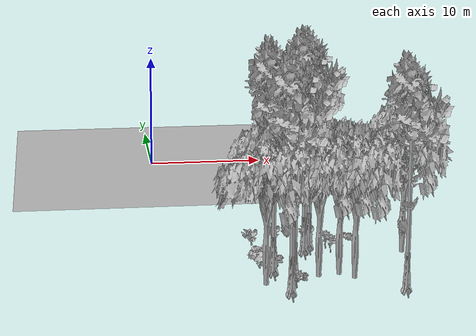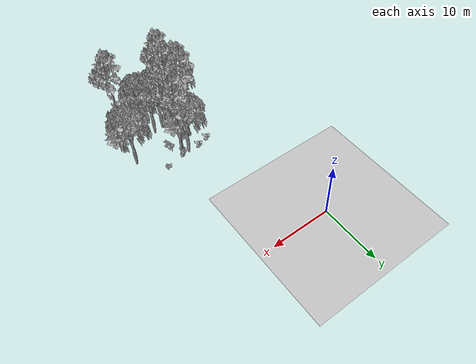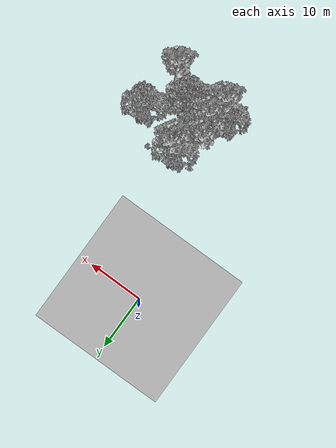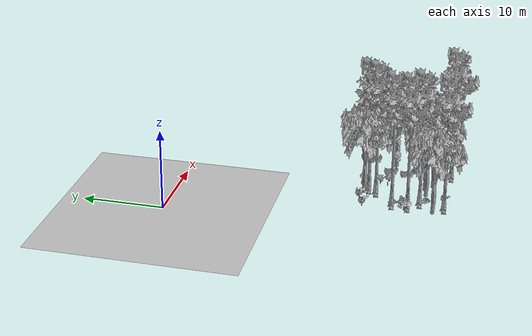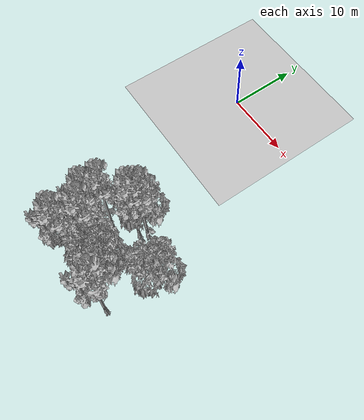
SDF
<sdf version="1.7">
 <world name="default">
  <model name="ground_plane">
   <static>1</static>
   <link name="link">
    <collision name="collision">
     <pose>-50 0 0 0 -0 0</pose>
     <geometry><plane><normal>0 0 1</normal><size>80 80</size></plane></geometry>
     <surface><contact><ode><min_depth>0.01</min_depth><max_vel>0</max_vel></ode></contact></surface>
    </collision>
    <visual name="grass">
     <cast_shadows>0</cast_shadows>
     <geometry>
      <mesh>
       <scale>0.46714285714285714 0.46714285714285714 0.1</scale>
       <uri>file://grass_plane/meshes/grass_plane.dae</uri>
      </mesh>
     </geometry>
    </visual>
   </link>
  </model>
  <model name="Tree 55">
   <static>1</static>
   <pose>17.632661621212804 -25.537050831752346 0 1.57079 -0 0</pose>
   <link name="link">
    <collision name="collision">
     <geometry><mesh><scale>3.5 5 3.5</scale><uri>model://tree_2/meshes/tree_2.obj</uri></mesh></geometry>
    </collision>
    <visual name="visual">
     <geometry><mesh><scale>3.5 5 3.5</scale><uri>model://tree_2/meshes/tree_2.obj</uri></mesh></geometry>
    </visual>
   </link>
  </model>
  <model name="Tree 137">
   <static>1</static>
   <pose>10.25907868177923 -23.945276035842316 0 1.57079 -0 0</pose>
   <link name="link">
    <collision name="collision">
     <geometry><mesh><scale>3.5 5 3.5</scale><uri>model://tree_9/meshes/tree_9.obj</uri></mesh></geometry>
    </collision>
    <visual name="visual">
     <geometry><mesh><scale>3.5 5 3.5</scale><uri>model://tree_9/meshes/tree_9.obj</uri></mesh></geometry>
    </visual>
   </link>
  </model>
  <model name="Tree 148">
   <static>1</static>
   <pose>7.224737145271803 -28.172150985968116 0 1.57079 -0 0</pose>
   <link name="link">
    <collision name="collision">
     <geometry><mesh><scale>3.5 5 3.5</scale><uri>model://tree_9/meshes/tree_9.obj</uri></mesh></geometry>
    </collision>
    <visual name="visual">
     <geometry><mesh><scale>3.5 5 3.5</scale><uri>model://tree_9/meshes/tree_9.obj</uri></mesh></geometry>
    </visual>
   </link>
  </model>
  <model name="Tree 259">
   <static>1</static>
   <pose>9.63490145569692 -22.59451453019791 0 1.57079 -0 0</pose>
   <link name="link">
    <collision name="collision">
     <geometry><mesh><scale>3.5 5 3.5</scale><uri>model://tree_2/meshes/tree_2.obj</uri></mesh></geometry>
    </collision>
    <visual name="visual">
     <geometry><mesh><scale>3.5 5 3.5</scale><uri>model://tree_2/meshes/tree_2.obj</uri></mesh></geometry>
    </visual>
   </link>
  </model>
  <model name="Tree 291">
   <static>1</static>
   <pose>16.433530380870288 -32.573287998336184 0 1.57079 -0 0</pose>
   <link name="link">
    <collision name="collision">
     <geometry><mesh><scale>3.5 5 3.5</scale><uri>model://tree_9/meshes/tree_9.obj</uri></mesh></geometry>
    </collision>
    <visual name="visual">
     <geometry><mesh><scale>3.5 5 3.5</scale><uri>model://tree_9/meshes/tree_9.obj</uri></mesh></geometry>
    </visual>
   </link>
  </model>
  <model name="Tree 295">
   <static>1</static>
   <pose>6.143224709162496 -31.300290355686275 0 1.57079 -0 0</pose>
   <link name="link">
    <collision name="collision">
     <geometry><mesh><scale>3.5 5 3.5</scale><uri>model://tree_2/meshes/tree_2.obj</uri></mesh></geometry>
    </collision>
    <visual name="visual">
     <geometry><mesh><scale>3.5 5 3.5</scale><uri>model://tree_2/meshes/tree_2.obj</uri></mesh></geometry>
    </visual>
   </link>
  </model>
  <model name="Tree 340">
   <static>1</static>
   <pose>8.617815341840625 -29.4753462498021 0 1.57079 -0 0</pose>
   <link name="link">
    <collision name="collision">
     <geometry><mesh><scale>3.5 5 3.5</scale><uri>model://tree_9/meshes/tree_9.obj</uri></mesh></geometry>
    </collision>
    <visual name="visual">
     <geometry><mesh><scale>3.5 5 3.5</scale><uri>model://tree_9/meshes/tree_9.obj</uri></mesh></geometry>
    </visual>
   </link>
  </model>
  <model name="Tree 344">
   <static>1</static>
   <pose>7.915771031941233 -32.46294408199248 0 1.57079 -0 0</pose>
   <link name="link">
    <collision name="collision">
     <geometry><mesh><scale>3.5 5 3.5</scale><uri>model://tree_9/meshes/tree_9.obj</uri></mesh></geometry>
    </collision>
    <visual name="visual">
     <geometry><mesh><scale>3.5 5 3.5</scale><uri>model://tree_9/meshes/tree_9.obj</uri></mesh></geometry>
    </visual>
   </link>
  </model>
  <model name="Tree 369">
   <static>1</static>
   <pose>12.874493996447647 -30.635437042448494 0 1.57079 -0 0</pose>
   <link name="link">
    <collision name="collision">
     <geometry><mesh><scale>3.5 5 3.5</scale><uri>model://tree_2/meshes/tree_2.obj</uri></mesh></geometry>
    </collision>
    <visual name="visual">
     <geometry><mesh><scale>3.5 5 3.5</scale><uri>model://tree_2/meshes/tree_2.obj</uri></mesh></geometry>
    </visual>
   </link>
  </model>
  <model name="Tree 378">
   <static>1</static>
   <pose>10.272586851166281 -30.061698999978105 0 1.57079 -0 0</pose>
   <link name="link">
    <collision name="collision">
     <geometry><mesh><scale>3.5 5 3.5</scale><uri>model://tree_2/meshes/tree_2.obj</uri></mesh></geometry>
    </collision>
    <visual name="visual">
     <geometry><mesh><scale>3.5 5 3.5</scale><uri>model://tree_2/meshes/tree_2.obj</uri></mesh></geometry>
    </visual>
   </link>
  </model>
  <model name="Tree 400">
   <static>1</static>
   <pose>7.4968896979451145 -26.25294973052405 0 1.57079 -0 0</pose>
   <link name="link">
    <collision name="collision">
     <geometry><mesh><scale>3.5 5 3.5</scale><uri>model://tree_9/meshes/tree_9.obj</uri></mesh></geometry>
    </collision>
    <visual name="visual">
     <geometry><mesh><scale>3.5 5 3.5</scale><uri>model://tree_9/meshes/tree_9.obj</uri></mesh></geometry>
    </visual>
   </link>
  </model>
  <model name="Tree 419">
   <static>1</static>
   <pose>10.809858921593595 -22.997342011953663 0 1.57079 -0 0</pose>
   <link name="link">
    <collision name="collision">
     <geometry><mesh><scale>3.5 5 3.5</scale><uri>model://tree_9/meshes/tree_9.obj</uri></mesh></geometry>
    </collision>
    <visual name="visual">
     <geometry><mesh><scale>3.5 5 3.5</scale><uri>model://tree_9/meshes/tree_9.obj</uri></mesh></geometry>
    </visual>
   </link>
  </model>
  <model name="Tree 551">
   <static>1</static>
   <pose>11.857822874566295 -29.75401861036613 0 1.57079 -0 0</pose>
   <link name="link">
    <collision name="collision">
     <geometry><mesh><scale>3.5 5 3.5</scale><uri>model://tree_2/meshes/tree_2.obj</uri></mesh></geometry>
    </collision>
    <visual name="visual">
     <geometry><mesh><scale>3.5 5 3.5</scale><uri>model://tree_2/meshes/tree_2.obj</uri></mesh></geometry>
    </visual>
   </link>
  </model>
  <model name="Bush 12">
   <static>1</static>
   <pose>7.735815455861861 -26.353391295812443 0 1.57079 -0 0</pose>
   <link name="link">
    <collision name="collision">
     <geometry><mesh><scale>2 2 2</scale><uri>model://bush_2/meshes/bush_2.obj</uri></mesh></geometry>
     <surface><contact><collide_without_contact>false</collide_without_contact></contact></surface>
    </collision>
    <visual name="visual">
     <geometry><mesh><scale>2 2 2</scale><uri>model://bush_2/meshes/bush_2.obj</uri></mesh></geometry>
    </visual>
   </link>
  </model>
  <model name="Bush 79">
   <static>1</static>
   <pose>9.004612278601904 -30.228343393348396 0 1.57079 -0 0</pose>
   <link name="link">
    <collision name="collision">
     <geometry><mesh><scale>2 2 2</scale><uri>model://bush_2/meshes/bush_2.obj</uri></mesh></geometry>
     <surface><contact><collide_without_contact>false</collide_without_contact></contact></surface>
    </collision>
    <visual name="visual">
     <geometry><mesh><scale>2 2 2</scale><uri>model://bush_2/meshes/bush_2.obj</uri></mesh></geometry>
    </visual>
   </link>
  </model>
  <model name="Bush 145">
   <static>1</static>
   <pose>6.223424675763546 -27.969022922116338 0 1.57079 -0 0</pose>
   <link name="link">
    <collision name="collision">
     <geometry><mesh><scale>2 2 2</scale><uri>model://bush_1/meshes/bush_1.obj</uri></mesh></geometry>
     <surface><contact><collide_without_contact>false</collide_without_contact></contact></surface>
    </collision>
    <visual name="visual">
     <geometry><mesh><scale>2 2 2</scale><uri>model://bush_1/meshes/bush_1.obj</uri></mesh></geometry>
    </visual>
   </link>
  </model>
  <model name="Bush 182">
   <static>1</static>
   <pose>8.154725225369297 -22.223827284359665 0 1.57079 -0 0</pose>
   <link name="link">
    <collision name="collision">
     <geometry><mesh><scale>2 2 2</scale><uri>model://bush_0/meshes/bush_0.obj</uri></mesh></geometry>
     <surface><contact><collide_without_contact>false</collide_without_contact></contact></surface>
    </collision>
    <visual name="visual">
     <geometry><mesh><scale>2 2 2</scale><uri>model://bush_0/meshes/bush_0.obj</uri></mesh></geometry>
    </visual>
   </link>
  </model>
  <model name="Bush 199">
   <static>1</static>
   <pose>6.263521482854493 -22.873723027576673 0 1.57079 -0 0</pose>
   <link name="link">
    <collision name="collision">
     <geometry><mesh><scale>2 2 2</scale><uri>model://bush_0/meshes/bush_0.obj</uri></mesh></geometry>
     <surface><contact><collide_without_contact>false</collide_without_contact></contact></surface>
    </collision>
    <visual name="visual">
     <geometry><mesh><scale>2 2 2</scale><uri>model://bush_0/meshes/bush_0.obj</uri></mesh></geometry>
    </visual>
   </link>
  </model>
  <model name="Bush 267">
   <static>1</static>
   <pose>14.028884419627097 -21.89934777012685 0 1.57079 -0 0</pose>
   <link name="link">
    <collision name="collision">
     <geometry><mesh><scale>2 2 2</scale><uri>model://bush_2/meshes/bush_2.obj</uri></mesh></geometry>
     <surface><contact><collide_without_contact>false</collide_without_contact></contact></surface>
    </collision>
    <visual name="visual">
     <geometry><mesh><scale>2 2 2</scale><uri>model://bush_2/meshes/bush_2.obj</uri></mesh></geometry>
    </visual>
   </link>
  </model>
  <model name="Bush 296">
   <static>1</static>
   <pose>12.176900964961497 -25.13654864507382 0 1.57079 -0 0</pose>
   <link name="link">
    <collision name="collision">
     <geometry><mesh><scale>2 2 2</scale><uri>model://bush_5/meshes/bush_5.obj</uri></mesh></geometry>
     <surface><contact><collide_without_contact>false</collide_without_contact></contact></surface>
    </collision>
    <visual name="visual">
     <geometry><mesh><scale>2 2 2</scale><uri>model://bush_5/meshes/bush_5.obj</uri></mesh></geometry>
    </visual>
   </link>
  </model>
  <model name="Bush 410">
   <static>1</static>
   <pose>10.838937420809998 -22.483551850757337 0 1.57079 -0 0</pose>
   <link name="link">
    <collision name="collision">
     <geometry><mesh><scale>2 2 2</scale><uri>model://bush_0/meshes/bush_0.obj</uri></mesh></geometry>
     <surface><contact><collide_without_contact>false</collide_without_contact></contact></surface>
    </collision>
    <visual name="visual">
     <geometry><mesh><scale>2 2 2</scale><uri>model://bush_0/meshes/bush_0.obj</uri></mesh></geometry>
    </visual>
   </link>
  </model>
  <model name="Bush 419">
   <static>1</static>
   <pose>11.930528969355613 -24.262854740106256 0 1.57079 -0 0</pose>
   <link name="link">
    <collision name="collision">
     <geometry><mesh><scale>2 2 2</scale><uri>model://bush_5/meshes/bush_5.obj</uri></mesh></geometry>
     <surface><contact><collide_without_contact>false</collide_without_contact></contact></surface>
    </collision>
    <visual name="visual">
     <geometry><mesh><scale>2 2 2</scale><uri>model://bush_5/meshes/bush_5.obj</uri></mesh></geometry>
    </visual>
   </link>
  </model>
  <model name="Bush 474">
   <static>1</static>
   <pose>8.349053972147203 -32.28053658324845 0 1.57079 -0 0</pose>
   <link name="link">
    <collision name="collision">
     <geometry><mesh><scale>2 2 2</scale><uri>model://bush_5/meshes/bush_5.obj</uri></mesh></geometry>
     <surface><contact><collide_without_contact>false</collide_without_contact></contact></surface>
    </collision>
    <visual name="visual">
     <geometry><mesh><scale>2 2 2</scale><uri>model://bush_5/meshes/bush_5.obj</uri></mesh></geometry>
    </visual>
   </link>
  </model>
 </world>
</sdf>
